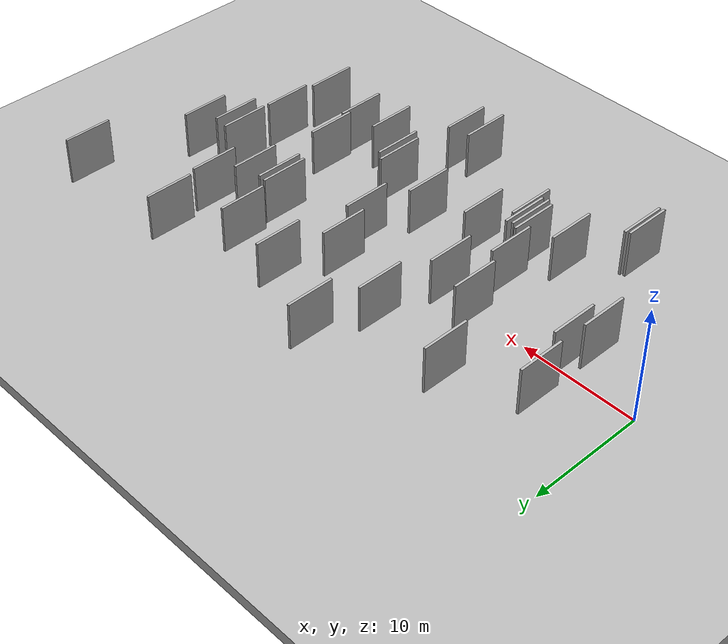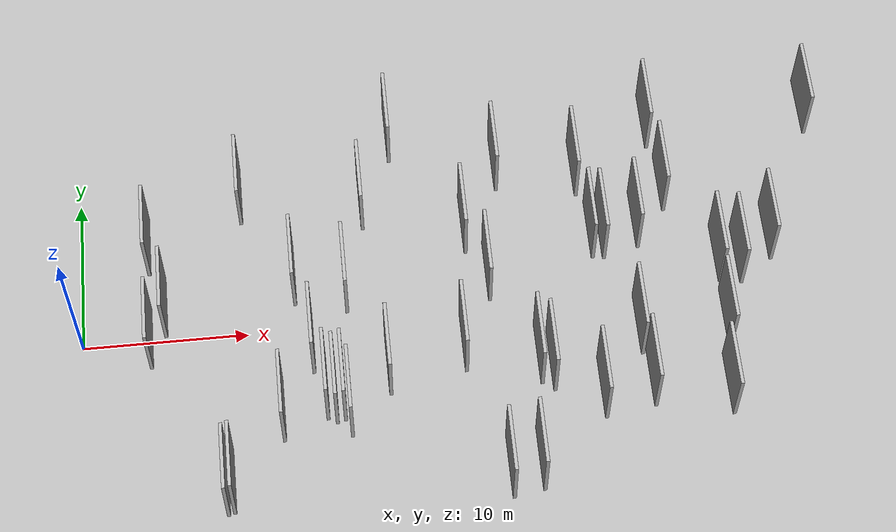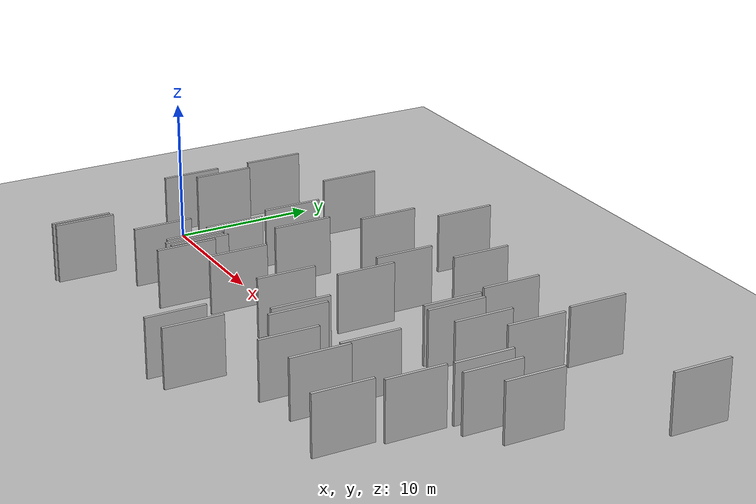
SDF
<?xml version="1.0" encoding="utf-8"?>

<sdf version="1.6">

   <world name="default">

      <gui fullscreen="0">

         <camera name="user_camera">

            <pose>-15 0 4.57585 0 0 0</pose>

            <view_controller>orbit</view_controller>

         </camera>

      </gui>

      <scene>

         <sky>

           <clouds>

             <speed>12</speed>

           </clouds>

         </sky>

         <ambient>0.4 0.4 0.4 1</ambient>

         <background>0.7 0.7 0.7 1</background>

         <shadows>1</shadows>

      </scene>

      <gravity>0 0 -9.8066</gravity>

      <magnetic_field>6e-06 2.3e-05 -4.2e-05</magnetic_field>

      <physics default="0" name="default_physics" type="ode">

         <ode>

            <solver>

               <type>quick</type>

               <iters>10</iters>

               <sor>1.0</sor>

               <use_dynamic_moi_rescaling>0</use_dynamic_moi_rescaling>

            </solver>

            <constraints>

               <cfm>0</cfm>

               <erp>0.2</erp>

               <contact_max_correcting_vel>100</contact_max_correcting_vel>

               <contact_surface_layer>0.001</contact_surface_layer>

            </constraints>

         </ode>

         <max_step_size>0.004</max_step_size>

         <real_time_factor>1</real_time_factor>

         <real_time_update_rate>250</real_time_update_rate>

      </physics>

      <light name="sun" type="directional">

         <cast_shadows>1</cast_shadows>

         <pose>0 0 10 0 0 0</pose>

         <diffuse>0.8 0.8 0.8 1</diffuse>

         <specular>0.2 0.2 0.2 1</specular>

         <attenuation>

            <range>1000</range>

            <constant>0.9</constant>

            <linear>0.01</linear>

            <quadratic>0.001</quadratic>

         </attenuation>

         <direction>-0.5 0.1 -0.9</direction>

      </light>

      <include>

         <name>ground_plane_1</name>

         <uri>model://HANNAS_ground_plane</uri>

         <pose>0 0 0  0 0 0</pose>

      </include>

      <include>

         <name>ground_plane_2</name>

         <uri>model://HANNAS_ground_plane</uri>

         <pose>100 0 0  0 0 0</pose>

      </include>

      <model name="HANNAS_wall_1">

         <static>1</static>

         <pose frame="">45.3977 11.6775 2.5 0.000000 0.000000 1.570796</pose>

         <link name="link">

            <pose frame="">0 0 2.00 0 0 0</pose>

            <collision name="collision">

               <geometry>

                  <box>

                     <size>4.00 0.2 4.00</size>

                  </box>

               </geometry>

               <max_contacts>10</max_contacts>

               <surface>

                  <contact>

                     <ode/>

                  </contact>

                  <bounce/>

                  <friction>

                     <torsional>

                        <ode/>

                     </torsional>

                     <ode/>

                  </friction>

               </surface>

            </collision>

            <visual name="visual">

               <cast_shadows>0</cast_shadows>

               <geometry>

                  <box>

                     <size>4.00 0.2 4.00</size>

                  </box>

               </geometry>

               <material>

                  <script>

                     <uri>model://HANNAS_wall/materials/scripts</uri>

                     <uri>model://HANNAS_wall/materials/textures</uri>

                     <name>vrc/HANNAS_wall</name>

                  </script>

               </material>

            </visual>

            <self_collide>0</self_collide>

            <enable_wind>0</enable_wind>

            <kinematic>0</kinematic>

         </link>

      </model>

      <model name="HANNAS_wall_2">

         <static>1</static>

         <pose frame="">22.7537 -2.9707 2.5 0.000000 0.000000 1.570796</pose>

         <link name="link">

            <pose frame="">0 0 2.00 0 0 0</pose>

            <collision name="collision">

               <geometry>

                  <box>

                     <size>4.00 0.2 4.00</size>

                  </box>

               </geometry>

               <max_contacts>10</max_contacts>

               <surface>

                  <contact>

                     <ode/>

                  </contact>

                  <bounce/>

                  <friction>

                     <torsional>

                        <ode/>

                     </torsional>

                     <ode/>

                  </friction>

               </surface>

            </collision>

            <visual name="visual">

               <cast_shadows>0</cast_shadows>

               <geometry>

                  <box>

                     <size>4.00 0.2 4.00</size>

                  </box>

               </geometry>

               <material>

                  <script>

                     <uri>model://HANNAS_wall/materials/scripts</uri>

                     <uri>model://HANNAS_wall/materials/textures</uri>

                     <name>vrc/HANNAS_wall</name>

                  </script>

               </material>

            </visual>

            <self_collide>0</self_collide>

            <enable_wind>0</enable_wind>

            <kinematic>0</kinematic>

         </link>

      </model>

      <model name="HANNAS_wall_3">

         <static>1</static>

         <pose frame="">4.3672 5.2588 2.5 0.000000 0.000000 1.570796</pose>

         <link name="link">

            <pose frame="">0 0 2.00 0 0 0</pose>

            <collision name="collision">

               <geometry>

                  <box>

                     <size>4.00 0.2 4.00</size>

                  </box>

               </geometry>

               <max_contacts>10</max_contacts>

               <surface>

                  <contact>

                     <ode/>

                  </contact>

                  <bounce/>

                  <friction>

                     <torsional>

                        <ode/>

                     </torsional>

                     <ode/>

                  </friction>

               </surface>

            </collision>

            <visual name="visual">

               <cast_shadows>0</cast_shadows>

               <geometry>

                  <box>

                     <size>4.00 0.2 4.00</size>

                  </box>

               </geometry>

               <material>

                  <script>

                     <uri>model://HANNAS_wall/materials/scripts</uri>

                     <uri>model://HANNAS_wall/materials/textures</uri>

                     <name>vrc/HANNAS_wall</name>

                  </script>

               </material>

            </visual>

            <self_collide>0</self_collide>

            <enable_wind>0</enable_wind>

            <kinematic>0</kinematic>

         </link>

      </model>

      <model name="HANNAS_wall_4">

         <static>1</static>

         <pose frame="">13.8308 -2.2377 2.5 0.000000 0.000000 1.570796</pose>

         <link name="link">

            <pose frame="">0 0 2.00 0 0 0</pose>

            <collision name="collision">

               <geometry>

                  <box>

                     <size>4.00 0.2 4.00</size>

                  </box>

               </geometry>

               <max_contacts>10</max_contacts>

               <surface>

                  <contact>

                     <ode/>

                  </contact>

                  <bounce/>

                  <friction>

                     <torsional>

                        <ode/>

                     </torsional>

                     <ode/>

                  </friction>

               </surface>

            </collision>

            <visual name="visual">

               <cast_shadows>0</cast_shadows>

               <geometry>

                  <box>

                     <size>4.00 0.2 4.00</size>

                  </box>

               </geometry>

               <material>

                  <script>

                     <uri>model://HANNAS_wall/materials/scripts</uri>

                     <uri>model://HANNAS_wall/materials/textures</uri>

                     <name>vrc/HANNAS_wall</name>

                  </script>

               </material>

            </visual>

            <self_collide>0</self_collide>

            <enable_wind>0</enable_wind>

            <kinematic>0</kinematic>

         </link>

      </model>

      <model name="HANNAS_wall_5">

         <static>1</static>

         <pose frame="">38.5071 1.6063 2.5 0.000000 0.000000 1.570796</pose>

         <link name="link">

            <pose frame="">0 0 2.00 0 0 0</pose>

            <collision name="collision">

               <geometry>

                  <box>

                     <size>4.00 0.2 4.00</size>

                  </box>

               </geometry>

               <max_contacts>10</max_contacts>

               <surface>

                  <contact>

                     <ode/>

                  </contact>

                  <bounce/>

                  <friction>

                     <torsional>

                        <ode/>

                     </torsional>

                     <ode/>

                  </friction>

               </surface>

            </collision>

            <visual name="visual">

               <cast_shadows>0</cast_shadows>

               <geometry>

                  <box>

                     <size>4.00 0.2 4.00</size>

                  </box>

               </geometry>

               <material>

                  <script>

                     <uri>model://HANNAS_wall/materials/scripts</uri>

                     <uri>model://HANNAS_wall/materials/textures</uri>

                     <name>vrc/HANNAS_wall</name>

                  </script>

               </material>

            </visual>

            <self_collide>0</self_collide>

            <enable_wind>0</enable_wind>

            <kinematic>0</kinematic>

         </link>

      </model>

      <model name="HANNAS_wall_6">

         <static>1</static>

         <pose frame="">27.7745 -4.6999 2.5 0.000000 0.000000 1.570796</pose>

         <link name="link">

            <pose frame="">0 0 2.00 0 0 0</pose>

            <collision name="collision">

               <geometry>

                  <box>

                     <size>4.00 0.2 4.00</size>

                  </box>

               </geometry>

               <max_contacts>10</max_contacts>

               <surface>

                  <contact>

                     <ode/>

                  </contact>

                  <bounce/>

                  <friction>

                     <torsional>

                        <ode/>

                     </torsional>

                     <ode/>

                  </friction>

               </surface>

            </collision>

            <visual name="visual">

               <cast_shadows>0</cast_shadows>

               <geometry>

                  <box>

                     <size>4.00 0.2 4.00</size>

                  </box>

               </geometry>

               <material>

                  <script>

                     <uri>model://HANNAS_wall/materials/scripts</uri>

                     <uri>model://HANNAS_wall/materials/textures</uri>

                     <name>vrc/HANNAS_wall</name>

                  </script>

               </material>

            </visual>

            <self_collide>0</self_collide>

            <enable_wind>0</enable_wind>

            <kinematic>0</kinematic>

         </link>

      </model>

      <model name="HANNAS_wall_7">

         <static>1</static>

         <pose frame="">15.4497 -5.4862 2.5 0.000000 0.000000 1.570796</pose>

         <link name="link">

            <pose frame="">0 0 2.00 0 0 0</pose>

            <collision name="collision">

               <geometry>

                  <box>

                     <size>4.00 0.2 4.00</size>

                  </box>

               </geometry>

               <max_contacts>10</max_contacts>

               <surface>

                  <contact>

                     <ode/>

                  </contact>

                  <bounce/>

                  <friction>

                     <torsional>

                        <ode/>

                     </torsional>

                     <ode/>

                  </friction>

               </surface>

            </collision>

            <visual name="visual">

               <cast_shadows>0</cast_shadows>

               <geometry>

                  <box>

                     <size>4.00 0.2 4.00</size>

                  </box>

               </geometry>

               <material>

                  <script>

                     <uri>model://HANNAS_wall/materials/scripts</uri>

                     <uri>model://HANNAS_wall/materials/textures</uri>

                     <name>vrc/HANNAS_wall</name>

                  </script>

               </material>

            </visual>

            <self_collide>0</self_collide>

            <enable_wind>0</enable_wind>

            <kinematic>0</kinematic>

         </link>

      </model>

      <model name="HANNAS_wall_8">

         <static>1</static>

         <pose frame="">33.5067 -6.2307 2.5 0.000000 0.000000 1.570796</pose>

         <link name="link">

            <pose frame="">0 0 2.00 0 0 0</pose>

            <collision name="collision">

               <geometry>

                  <box>

                     <size>4.00 0.2 4.00</size>

                  </box>

               </geometry>

               <max_contacts>10</max_contacts>

               <surface>

                  <contact>

                     <ode/>

                  </contact>

                  <bounce/>

                  <friction>

                     <torsional>

                        <ode/>

                     </torsional>

                     <ode/>

                  </friction>

               </surface>

            </collision>

            <visual name="visual">

               <cast_shadows>0</cast_shadows>

               <geometry>

                  <box>

                     <size>4.00 0.2 4.00</size>

                  </box>

               </geometry>

               <material>

                  <script>

                     <uri>model://HANNAS_wall/materials/scripts</uri>

                     <uri>model://HANNAS_wall/materials/textures</uri>

                     <name>vrc/HANNAS_wall</name>

                  </script>

               </material>

            </visual>

            <self_collide>0</self_collide>

            <enable_wind>0</enable_wind>

            <kinematic>0</kinematic>

         </link>

      </model>

      <model name="HANNAS_wall_9">

         <static>1</static>

         <pose frame="">27.0793 -4.1753 2.5 0.000000 0.000000 1.570796</pose>

         <link name="link">

            <pose frame="">0 0 2.00 0 0 0</pose>

            <collision name="collision">

               <geometry>

                  <box>

                     <size>4.00 0.2 4.00</size>

                  </box>

               </geometry>

               <max_contacts>10</max_contacts>

               <surface>

                  <contact>

                     <ode/>

                  </contact>

                  <bounce/>

                  <friction>

                     <torsional>

                        <ode/>

                     </torsional>

                     <ode/>

                  </friction>

               </surface>

            </collision>

            <visual name="visual">

               <cast_shadows>0</cast_shadows>

               <geometry>

                  <box>

                     <size>4.00 0.2 4.00</size>

                  </box>

               </geometry>

               <material>

                  <script>

                     <uri>model://HANNAS_wall/materials/scripts</uri>

                     <uri>model://HANNAS_wall/materials/textures</uri>

                     <name>vrc/HANNAS_wall</name>

                  </script>

               </material>

            </visual>

            <self_collide>0</self_collide>

            <enable_wind>0</enable_wind>

            <kinematic>0</kinematic>

         </link>

      </model>

      <model name="HANNAS_wall_10">

         <static>1</static>

         <pose frame="">14.9613 -5.6307 2.5 0.000000 0.000000 1.570796</pose>

         <link name="link">

            <pose frame="">0 0 2.00 0 0 0</pose>

            <collision name="collision">

               <geometry>

                  <box>

                     <size>4.00 0.2 4.00</size>

                  </box>

               </geometry>

               <max_contacts>10</max_contacts>

               <surface>

                  <contact>

                     <ode/>

                  </contact>

                  <bounce/>

                  <friction>

                     <torsional>

                        <ode/>

                     </torsional>

                     <ode/>

                  </friction>

               </surface>

            </collision>

            <visual name="visual">

               <cast_shadows>0</cast_shadows>

               <geometry>

                  <box>

                     <size>4.00 0.2 4.00</size>

                  </box>

               </geometry>

               <material>

                  <script>

                     <uri>model://HANNAS_wall/materials/scripts</uri>

                     <uri>model://HANNAS_wall/materials/textures</uri>

                     <name>vrc/HANNAS_wall</name>

                  </script>

               </material>

            </visual>

            <self_collide>0</self_collide>

            <enable_wind>0</enable_wind>

            <kinematic>0</kinematic>

         </link>

      </model>

      <model name="HANNAS_wall_11">

         <static>1</static>

         <pose frame="">24.6062 1.6296 2.5 0.000000 0.000000 1.570796</pose>

         <link name="link">

            <pose frame="">0 0 2.00 0 0 0</pose>

            <collision name="collision">

               <geometry>

                  <box>

                     <size>4.00 0.2 4.00</size>

                  </box>

               </geometry>

               <max_contacts>10</max_contacts>

               <surface>

                  <contact>

                     <ode/>

                  </contact>

                  <bounce/>

                  <friction>

                     <torsional>

                        <ode/>

                     </torsional>

                     <ode/>

                  </friction>

               </surface>

            </collision>

            <visual name="visual">

               <cast_shadows>0</cast_shadows>

               <geometry>

                  <box>

                     <size>4.00 0.2 4.00</size>

                  </box>

               </geometry>

               <material>

                  <script>

                     <uri>model://HANNAS_wall/materials/scripts</uri>

                     <uri>model://HANNAS_wall/materials/textures</uri>

                     <name>vrc/HANNAS_wall</name>

                  </script>

               </material>

            </visual>

            <self_collide>0</self_collide>

            <enable_wind>0</enable_wind>

            <kinematic>0</kinematic>

         </link>

      </model>

      <model name="HANNAS_wall_12">

         <static>1</static>

         <pose frame="">8.4227 -10.8272 2.5 0.000000 0.000000 1.570796</pose>

         <link name="link">

            <pose frame="">0 0 2.00 0 0 0</pose>

            <collision name="collision">

               <geometry>

                  <box>

                     <size>4.00 0.2 4.00</size>

                  </box>

               </geometry>

               <max_contacts>10</max_contacts>

               <surface>

                  <contact>

                     <ode/>

                  </contact>

                  <bounce/>

                  <friction>

                     <torsional>

                        <ode/>

                     </torsional>

                     <ode/>

                  </friction>

               </surface>

            </collision>

            <visual name="visual">

               <cast_shadows>0</cast_shadows>

               <geometry>

                  <box>

                     <size>4.00 0.2 4.00</size>

                  </box>

               </geometry>

               <material>

                  <script>

                     <uri>model://HANNAS_wall/materials/scripts</uri>

                     <uri>model://HANNAS_wall/materials/textures</uri>

                     <name>vrc/HANNAS_wall</name>

                  </script>

               </material>

            </visual>

            <self_collide>0</self_collide>

            <enable_wind>0</enable_wind>

            <kinematic>0</kinematic>

         </link>

      </model>

      <model name="HANNAS_wall_13">

         <static>1</static>

         <pose frame="">37.9664 -7.1653 2.5 0.000000 0.000000 1.570796</pose>

         <link name="link">

            <pose frame="">0 0 2.00 0 0 0</pose>

            <collision name="collision">

               <geometry>

                  <box>

                     <size>4.00 0.2 4.00</size>

                  </box>

               </geometry>

               <max_contacts>10</max_contacts>

               <surface>

                  <contact>

                     <ode/>

                  </contact>

                  <bounce/>

                  <friction>

                     <torsional>

                        <ode/>

                     </torsional>

                     <ode/>

                  </friction>

               </surface>

            </collision>

            <visual name="visual">

               <cast_shadows>0</cast_shadows>

               <geometry>

                  <box>

                     <size>4.00 0.2 4.00</size>

                  </box>

               </geometry>

               <material>

                  <script>

                     <uri>model://HANNAS_wall/materials/scripts</uri>

                     <uri>model://HANNAS_wall/materials/textures</uri>

                     <name>vrc/HANNAS_wall</name>

                  </script>

               </material>

            </visual>

            <self_collide>0</self_collide>

            <enable_wind>0</enable_wind>

            <kinematic>0</kinematic>

         </link>

      </model>

      <model name="HANNAS_wall_14">

         <static>1</static>

         <pose frame="">33.9130 4.4398 2.5 0.000000 0.000000 1.570796</pose>

         <link name="link">

            <pose frame="">0 0 2.00 0 0 0</pose>

            <collision name="collision">

               <geometry>

                  <box>

                     <size>4.00 0.2 4.00</size>

                  </box>

               </geometry>

               <max_contacts>10</max_contacts>

               <surface>

                  <contact>

                     <ode/>

                  </contact>

                  <bounce/>

                  <friction>

                     <torsional>

                        <ode/>

                     </torsional>

                     <ode/>

                  </friction>

               </surface>

            </collision>

            <visual name="visual">

               <cast_shadows>0</cast_shadows>

               <geometry>

                  <box>

                     <size>4.00 0.2 4.00</size>

                  </box>

               </geometry>

               <material>

                  <script>

                     <uri>model://HANNAS_wall/materials/scripts</uri>

                     <uri>model://HANNAS_wall/materials/textures</uri>

                     <name>vrc/HANNAS_wall</name>

                  </script>

               </material>

            </visual>

            <self_collide>0</self_collide>

            <enable_wind>0</enable_wind>

            <kinematic>0</kinematic>

         </link>

      </model>

      <model name="HANNAS_wall_15">

         <static>1</static>

         <pose frame="">10.0478 8.3223 2.5 0.000000 0.000000 1.570796</pose>

         <link name="link">

            <pose frame="">0 0 2.00 0 0 0</pose>

            <collision name="collision">

               <geometry>

                  <box>

                     <size>4.00 0.2 4.00</size>

                  </box>

               </geometry>

               <max_contacts>10</max_contacts>

               <surface>

                  <contact>

                     <ode/>

                  </contact>

                  <bounce/>

                  <friction>

                     <torsional>

                        <ode/>

                     </torsional>

                     <ode/>

                  </friction>

               </surface>

            </collision>

            <visual name="visual">

               <cast_shadows>0</cast_shadows>

               <geometry>

                  <box>

                     <size>4.00 0.2 4.00</size>

                  </box>

               </geometry>

               <material>

                  <script>

                     <uri>model://HANNAS_wall/materials/scripts</uri>

                     <uri>model://HANNAS_wall/materials/textures</uri>

                     <name>vrc/HANNAS_wall</name>

                  </script>

               </material>

            </visual>

            <self_collide>0</self_collide>

            <enable_wind>0</enable_wind>

            <kinematic>0</kinematic>

         </link>

      </model>

      <model name="HANNAS_wall_16">

         <static>1</static>

         <pose frame="">23.4677 5.0168 2.5 0.000000 0.000000 1.570796</pose>

         <link name="link">

            <pose frame="">0 0 2.00 0 0 0</pose>

            <collision name="collision">

               <geometry>

                  <box>

                     <size>4.00 0.2 4.00</size>

                  </box>

               </geometry>

               <max_contacts>10</max_contacts>

               <surface>

                  <contact>

                     <ode/>

                  </contact>

                  <bounce/>

                  <friction>

                     <torsional>

                        <ode/>

                     </torsional>

                     <ode/>

                  </friction>

               </surface>

            </collision>

            <visual name="visual">

               <cast_shadows>0</cast_shadows>

               <geometry>

                  <box>

                     <size>4.00 0.2 4.00</size>

                  </box>

               </geometry>

               <material>

                  <script>

                     <uri>model://HANNAS_wall/materials/scripts</uri>

                     <uri>model://HANNAS_wall/materials/textures</uri>

                     <name>vrc/HANNAS_wall</name>

                  </script>

               </material>

            </visual>

            <self_collide>0</self_collide>

            <enable_wind>0</enable_wind>

            <kinematic>0</kinematic>

         </link>

      </model>

      <model name="HANNAS_wall_17">

         <static>1</static>

         <pose frame="">15.7750 -6.5545 2.5 0.000000 0.000000 1.570796</pose>

         <link name="link">

            <pose frame="">0 0 2.00 0 0 0</pose>

            <collision name="collision">

               <geometry>

                  <box>

                     <size>4.00 0.2 4.00</size>

                  </box>

               </geometry>

               <max_contacts>10</max_contacts>

               <surface>

                  <contact>

                     <ode/>

                  </contact>

                  <bounce/>

                  <friction>

                     <torsional>

                        <ode/>

                     </torsional>

                     <ode/>

                  </friction>

               </surface>

            </collision>

            <visual name="visual">

               <cast_shadows>0</cast_shadows>

               <geometry>

                  <box>

                     <size>4.00 0.2 4.00</size>

                  </box>

               </geometry>

               <material>

                  <script>

                     <uri>model://HANNAS_wall/materials/scripts</uri>

                     <uri>model://HANNAS_wall/materials/textures</uri>

                     <name>vrc/HANNAS_wall</name>

                  </script>

               </material>

            </visual>

            <self_collide>0</self_collide>

            <enable_wind>0</enable_wind>

            <kinematic>0</kinematic>

         </link>

      </model>

      <model name="HANNAS_wall_18">

         <static>1</static>

         <pose frame="">41.8086 2.8815 2.5 0.000000 0.000000 1.570796</pose>

         <link name="link">

            <pose frame="">0 0 2.00 0 0 0</pose>

            <collision name="collision">

               <geometry>

                  <box>

                     <size>4.00 0.2 4.00</size>

                  </box>

               </geometry>

               <max_contacts>10</max_contacts>

               <surface>

                  <contact>

                     <ode/>

                  </contact>

                  <bounce/>

                  <friction>

                     <torsional>

                        <ode/>

                     </torsional>

                     <ode/>

                  </friction>

               </surface>

            </collision>

            <visual name="visual">

               <cast_shadows>0</cast_shadows>

               <geometry>

                  <box>

                     <size>4.00 0.2 4.00</size>

                  </box>

               </geometry>

               <material>

                  <script>

                     <uri>model://HANNAS_wall/materials/scripts</uri>

                     <uri>model://HANNAS_wall/materials/textures</uri>

                     <name>vrc/HANNAS_wall</name>

                  </script>

               </material>

            </visual>

            <self_collide>0</self_collide>

            <enable_wind>0</enable_wind>

            <kinematic>0</kinematic>

         </link>

      </model>

      <model name="HANNAS_wall_19">

         <static>1</static>

         <pose frame="">12.9870 2.4000 2.5 0.000000 0.000000 1.570796</pose>

         <link name="link">

            <pose frame="">0 0 2.00 0 0 0</pose>

            <collision name="collision">

               <geometry>

                  <box>

                     <size>4.00 0.2 4.00</size>

                  </box>

               </geometry>

               <max_contacts>10</max_contacts>

               <surface>

                  <contact>

                     <ode/>

                  </contact>

                  <bounce/>

                  <friction>

                     <torsional>

                        <ode/>

                     </torsional>

                     <ode/>

                  </friction>

               </surface>

            </collision>

            <visual name="visual">

               <cast_shadows>0</cast_shadows>

               <geometry>

                  <box>

                     <size>4.00 0.2 4.00</size>

                  </box>

               </geometry>

               <material>

                  <script>

                     <uri>model://HANNAS_wall/materials/scripts</uri>

                     <uri>model://HANNAS_wall/materials/textures</uri>

                     <name>vrc/HANNAS_wall</name>

                  </script>

               </material>

            </visual>

            <self_collide>0</self_collide>

            <enable_wind>0</enable_wind>

            <kinematic>0</kinematic>

         </link>

      </model>

      <model name="HANNAS_wall_20">

         <static>1</static>

         <pose frame="">8.7756 -10.7114 2.5 0.000000 0.000000 1.570796</pose>

         <link name="link">

            <pose frame="">0 0 2.00 0 0 0</pose>

            <collision name="collision">

               <geometry>

                  <box>

                     <size>4.00 0.2 4.00</size>

                  </box>

               </geometry>

               <max_contacts>10</max_contacts>

               <surface>

                  <contact>

                     <ode/>

                  </contact>

                  <bounce/>

                  <friction>

                     <torsional>

                        <ode/>

                     </torsional>

                     <ode/>

                  </friction>

               </surface>

            </collision>

            <visual name="visual">

               <cast_shadows>0</cast_shadows>

               <geometry>

                  <box>

                     <size>4.00 0.2 4.00</size>

                  </box>

               </geometry>

               <material>

                  <script>

                     <uri>model://HANNAS_wall/materials/scripts</uri>

                     <uri>model://HANNAS_wall/materials/textures</uri>

                     <name>vrc/HANNAS_wall</name>

                  </script>

               </material>

            </visual>

            <self_collide>0</self_collide>

            <enable_wind>0</enable_wind>

            <kinematic>0</kinematic>

         </link>

      </model>

      <model name="HANNAS_wall_21">

         <static>1</static>

         <pose frame="">11.8575 -6.4909 2.5 0.000000 0.000000 1.570796</pose>

         <link name="link">

            <pose frame="">0 0 2.00 0 0 0</pose>

            <collision name="collision">

               <geometry>

                  <box>

                     <size>4.00 0.2 4.00</size>

                  </box>

               </geometry>

               <max_contacts>10</max_contacts>

               <surface>

                  <contact>

                     <ode/>

                  </contact>

                  <bounce/>

                  <friction>

                     <torsional>

                        <ode/>

                     </torsional>

                     <ode/>

                  </friction>

               </surface>

            </collision>

            <visual name="visual">

               <cast_shadows>0</cast_shadows>

               <geometry>

                  <box>

                     <size>4.00 0.2 4.00</size>

                  </box>

               </geometry>

               <material>

                  <script>

                     <uri>model://HANNAS_wall/materials/scripts</uri>

                     <uri>model://HANNAS_wall/materials/textures</uri>

                     <name>vrc/HANNAS_wall</name>

                  </script>

               </material>

            </visual>

            <self_collide>0</self_collide>

            <enable_wind>0</enable_wind>

            <kinematic>0</kinematic>

         </link>

      </model>

      <model name="HANNAS_wall_22">

         <static>1</static>

         <pose frame="">30.5495 -6.7276 2.5 0.000000 0.000000 1.570796</pose>

         <link name="link">

            <pose frame="">0 0 2.00 0 0 0</pose>

            <collision name="collision">

               <geometry>

                  <box>

                     <size>4.00 0.2 4.00</size>

                  </box>

               </geometry>

               <max_contacts>10</max_contacts>

               <surface>

                  <contact>

                     <ode/>

                  </contact>

                  <bounce/>

                  <friction>

                     <torsional>

                        <ode/>

                     </torsional>

                     <ode/>

                  </friction>

               </surface>

            </collision>

            <visual name="visual">

               <cast_shadows>0</cast_shadows>

               <geometry>

                  <box>

                     <size>4.00 0.2 4.00</size>

                  </box>

               </geometry>

               <material>

                  <script>

                     <uri>model://HANNAS_wall/materials/scripts</uri>

                     <uri>model://HANNAS_wall/materials/textures</uri>

                     <name>vrc/HANNAS_wall</name>

                  </script>

               </material>

            </visual>

            <self_collide>0</self_collide>

            <enable_wind>0</enable_wind>

            <kinematic>0</kinematic>

         </link>

      </model>

      <model name="HANNAS_wall_23">

         <static>1</static>

         <pose frame="">31.7696 3.8670 2.5 0.000000 0.000000 1.570796</pose>

         <link name="link">

            <pose frame="">0 0 2.00 0 0 0</pose>

            <collision name="collision">

               <geometry>

                  <box>

                     <size>4.00 0.2 4.00</size>

                  </box>

               </geometry>

               <max_contacts>10</max_contacts>

               <surface>

                  <contact>

                     <ode/>

                  </contact>

                  <bounce/>

                  <friction>

                     <torsional>

                        <ode/>

                     </torsional>

                     <ode/>

                  </friction>

               </surface>

            </collision>

            <visual name="visual">

               <cast_shadows>0</cast_shadows>

               <geometry>

                  <box>

                     <size>4.00 0.2 4.00</size>

                  </box>

               </geometry>

               <material>

                  <script>

                     <uri>model://HANNAS_wall/materials/scripts</uri>

                     <uri>model://HANNAS_wall/materials/textures</uri>

                     <name>vrc/HANNAS_wall</name>

                  </script>

               </material>

            </visual>

            <self_collide>0</self_collide>

            <enable_wind>0</enable_wind>

            <kinematic>0</kinematic>

         </link>

      </model>

      <model name="HANNAS_wall_24">

         <static>1</static>

         <pose frame="">16.0452 1.6041 2.5 0.000000 0.000000 1.570796</pose>

         <link name="link">

            <pose frame="">0 0 2.00 0 0 0</pose>

            <collision name="collision">

               <geometry>

                  <box>

                     <size>4.00 0.2 4.00</size>

                  </box>

               </geometry>

               <max_contacts>10</max_contacts>

               <surface>

                  <contact>

                     <ode/>

                  </contact>

                  <bounce/>

                  <friction>

                     <torsional>

                        <ode/>

                     </torsional>

                     <ode/>

                  </friction>

               </surface>

            </collision>

            <visual name="visual">

               <cast_shadows>0</cast_shadows>

               <geometry>

                  <box>

                     <size>4.00 0.2 4.00</size>

                  </box>

               </geometry>

               <material>

                  <script>

                     <uri>model://HANNAS_wall/materials/scripts</uri>

                     <uri>model://HANNAS_wall/materials/textures</uri>

                     <name>vrc/HANNAS_wall</name>

                  </script>

               </material>

            </visual>

            <self_collide>0</self_collide>

            <enable_wind>0</enable_wind>

            <kinematic>0</kinematic>

         </link>

      </model>

      <model name="HANNAS_wall_25">

         <static>1</static>

         <pose frame="">31.1017 3.9768 2.5 0.000000 0.000000 1.570796</pose>

         <link name="link">

            <pose frame="">0 0 2.00 0 0 0</pose>

            <collision name="collision">

               <geometry>

                  <box>

                     <size>4.00 0.2 4.00</size>

                  </box>

               </geometry>

               <max_contacts>10</max_contacts>

               <surface>

                  <contact>

                     <ode/>

                  </contact>

                  <bounce/>

                  <friction>

                     <torsional>

                        <ode/>

                     </torsional>

                     <ode/>

                  </friction>

               </surface>

            </collision>

            <visual name="visual">

               <cast_shadows>0</cast_shadows>

               <geometry>

                  <box>

                     <size>4.00 0.2 4.00</size>

                  </box>

               </geometry>

               <material>

                  <script>

                     <uri>model://HANNAS_wall/materials/scripts</uri>

                     <uri>model://HANNAS_wall/materials/textures</uri>

                     <name>vrc/HANNAS_wall</name>

                  </script>

               </material>

            </visual>

            <self_collide>0</self_collide>

            <enable_wind>0</enable_wind>

            <kinematic>0</kinematic>

         </link>

      </model>

      <model name="HANNAS_wall_26">

         <static>1</static>

         <pose frame="">24.6477 -11.2456 2.5 0.000000 0.000000 1.570796</pose>

         <link name="link">

            <pose frame="">0 0 2.00 0 0 0</pose>

            <collision name="collision">

               <geometry>

                  <box>

                     <size>4.00 0.2 4.00</size>

                  </box>

               </geometry>

               <max_contacts>10</max_contacts>

               <surface>

                  <contact>

                     <ode/>

                  </contact>

                  <bounce/>

                  <friction>

                     <torsional>

                        <ode/>

                     </torsional>

                     <ode/>

                  </friction>

               </surface>

            </collision>

            <visual name="visual">

               <cast_shadows>0</cast_shadows>

               <geometry>

                  <box>

                     <size>4.00 0.2 4.00</size>

                  </box>

               </geometry>

               <material>

                  <script>

                     <uri>model://HANNAS_wall/materials/scripts</uri>

                     <uri>model://HANNAS_wall/materials/textures</uri>

                     <name>vrc/HANNAS_wall</name>

                  </script>

               </material>

            </visual>

            <self_collide>0</self_collide>

            <enable_wind>0</enable_wind>

            <kinematic>0</kinematic>

         </link>

      </model>

      <model name="HANNAS_wall_27">

         <static>1</static>

         <pose frame="">35.8238 6.8842 2.5 0.000000 0.000000 1.570796</pose>

         <link name="link">

            <pose frame="">0 0 2.00 0 0 0</pose>

            <collision name="collision">

               <geometry>

                  <box>

                     <size>4.00 0.2 4.00</size>

                  </box>

               </geometry>

               <max_contacts>10</max_contacts>

               <surface>

                  <contact>

                     <ode/>

                  </contact>

                  <bounce/>

                  <friction>

                     <torsional>

                        <ode/>

                     </torsional>

                     <ode/>

                  </friction>

               </surface>

            </collision>

            <visual name="visual">

               <cast_shadows>0</cast_shadows>

               <geometry>

                  <box>

                     <size>4.00 0.2 4.00</size>

                  </box>

               </geometry>

               <material>

                  <script>

                     <uri>model://HANNAS_wall/materials/scripts</uri>

                     <uri>model://HANNAS_wall/materials/textures</uri>

                     <name>vrc/HANNAS_wall</name>

                  </script>

               </material>

            </visual>

            <self_collide>0</self_collide>

            <enable_wind>0</enable_wind>

            <kinematic>0</kinematic>

         </link>

      </model>

      <model name="HANNAS_wall_28">

         <static>1</static>

         <pose frame="">38.4289 -2.8117 2.5 0.000000 0.000000 1.570796</pose>

         <link name="link">

            <pose frame="">0 0 2.00 0 0 0</pose>

            <collision name="collision">

               <geometry>

                  <box>

                     <size>4.00 0.2 4.00</size>

                  </box>

               </geometry>

               <max_contacts>10</max_contacts>

               <surface>

                  <contact>

                     <ode/>

                  </contact>

                  <bounce/>

                  <friction>

                     <torsional>

                        <ode/>

                     </torsional>

                     <ode/>

                  </friction>

               </surface>

            </collision>

            <visual name="visual">

               <cast_shadows>0</cast_shadows>

               <geometry>

                  <box>

                     <size>4.00 0.2 4.00</size>

                  </box>

               </geometry>

               <material>

                  <script>

                     <uri>model://HANNAS_wall/materials/scripts</uri>

                     <uri>model://HANNAS_wall/materials/textures</uri>

                     <name>vrc/HANNAS_wall</name>

                  </script>

               </material>

            </visual>

            <self_collide>0</self_collide>

            <enable_wind>0</enable_wind>

            <kinematic>0</kinematic>

         </link>

      </model>

      <model name="HANNAS_wall_29">

         <static>1</static>

         <pose frame="">18.2051 -4.0676 2.5 0.000000 0.000000 1.570796</pose>

         <link name="link">

            <pose frame="">0 0 2.00 0 0 0</pose>

            <collision name="collision">

               <geometry>

                  <box>

                     <size>4.00 0.2 4.00</size>

                  </box>

               </geometry>

               <max_contacts>10</max_contacts>

               <surface>

                  <contact>

                     <ode/>

                  </contact>

                  <bounce/>

                  <friction>

                     <torsional>

                        <ode/>

                     </torsional>

                     <ode/>

                  </friction>

               </surface>

            </collision>

            <visual name="visual">

               <cast_shadows>0</cast_shadows>

               <geometry>

                  <box>

                     <size>4.00 0.2 4.00</size>

                  </box>

               </geometry>

               <material>

                  <script>

                     <uri>model://HANNAS_wall/materials/scripts</uri>

                     <uri>model://HANNAS_wall/materials/textures</uri>

                     <name>vrc/HANNAS_wall</name>

                  </script>

               </material>

            </visual>

            <self_collide>0</self_collide>

            <enable_wind>0</enable_wind>

            <kinematic>0</kinematic>

         </link>

      </model>

      <model name="HANNAS_wall_30">

         <static>1</static>

         <pose frame="">33.2054 -2.7865 2.5 0.000000 0.000000 1.570796</pose>

         <link name="link">

            <pose frame="">0 0 2.00 0 0 0</pose>

            <collision name="collision">

               <geometry>

                  <box>

                     <size>4.00 0.2 4.00</size>

                  </box>

               </geometry>

               <max_contacts>10</max_contacts>

               <surface>

                  <contact>

                     <ode/>

                  </contact>

                  <bounce/>

                  <friction>

                     <torsional>

                        <ode/>

                     </torsional>

                     <ode/>

                  </friction>

               </surface>

            </collision>

            <visual name="visual">

               <cast_shadows>0</cast_shadows>

               <geometry>

                  <box>

                     <size>4.00 0.2 4.00</size>

                  </box>

               </geometry>

               <material>

                  <script>

                     <uri>model://HANNAS_wall/materials/scripts</uri>

                     <uri>model://HANNAS_wall/materials/textures</uri>

                     <name>vrc/HANNAS_wall</name>

                  </script>

               </material>

            </visual>

            <self_collide>0</self_collide>

            <enable_wind>0</enable_wind>

            <kinematic>0</kinematic>

         </link>

      </model>

      <model name="HANNAS_wall_31">

         <static>1</static>

         <pose frame="">4.3388 -1.0406 2.5 0.000000 0.000000 1.570796</pose>

         <link name="link">

            <pose frame="">0 0 2.00 0 0 0</pose>

            <collision name="collision">

               <geometry>

                  <box>

                     <size>4.00 0.2 4.00</size>

                  </box>

               </geometry>

               <max_contacts>10</max_contacts>

               <surface>

                  <contact>

                     <ode/>

                  </contact>

                  <bounce/>

                  <friction>

                     <torsional>

                        <ode/>

                     </torsional>

                     <ode/>

                  </friction>

               </surface>

            </collision>

            <visual name="visual">

               <cast_shadows>0</cast_shadows>

               <geometry>

                  <box>

                     <size>4.00 0.2 4.00</size>

                  </box>

               </geometry>

               <material>

                  <script>

                     <uri>model://HANNAS_wall/materials/scripts</uri>

                     <uri>model://HANNAS_wall/materials/textures</uri>

                     <name>vrc/HANNAS_wall</name>

                  </script>

               </material>

            </visual>

            <self_collide>0</self_collide>

            <enable_wind>0</enable_wind>

            <kinematic>0</kinematic>

         </link>

      </model>

      <model name="HANNAS_wall_32">

         <static>1</static>

         <pose frame="">5.2439 0.9597 2.5 0.000000 0.000000 1.570796</pose>

         <link name="link">

            <pose frame="">0 0 2.00 0 0 0</pose>

            <collision name="collision">

               <geometry>

                  <box>

                     <size>4.00 0.2 4.00</size>

                  </box>

               </geometry>

               <max_contacts>10</max_contacts>

               <surface>

                  <contact>

                     <ode/>

                  </contact>

                  <bounce/>

                  <friction>

                     <torsional>

                        <ode/>

                     </torsional>

                     <ode/>

                  </friction>

               </surface>

            </collision>

            <visual name="visual">

               <cast_shadows>0</cast_shadows>

               <geometry>

                  <box>

                     <size>4.00 0.2 4.00</size>

                  </box>

               </geometry>

               <material>

                  <script>

                     <uri>model://HANNAS_wall/materials/scripts</uri>

                     <uri>model://HANNAS_wall/materials/textures</uri>

                     <name>vrc/HANNAS_wall</name>

                  </script>

               </material>

            </visual>

            <self_collide>0</self_collide>

            <enable_wind>0</enable_wind>

            <kinematic>0</kinematic>

         </link>

      </model>

      <model name="HANNAS_wall_33">

         <static>1</static>

         <pose frame="">19.3803 11.9626 2.5 0.000000 0.000000 1.570796</pose>

         <link name="link">

            <pose frame="">0 0 2.00 0 0 0</pose>

            <collision name="collision">

               <geometry>

                  <box>

                     <size>4.00 0.2 4.00</size>

                  </box>

               </geometry>

               <max_contacts>10</max_contacts>

               <surface>

                  <contact>

                     <ode/>

                  </contact>

                  <bounce/>

                  <friction>

                     <torsional>

                        <ode/>

                     </torsional>

                     <ode/>

                  </friction>

               </surface>

            </collision>

            <visual name="visual">

               <cast_shadows>0</cast_shadows>

               <geometry>

                  <box>

                     <size>4.00 0.2 4.00</size>

                  </box>

               </geometry>

               <material>

                  <script>

                     <uri>model://HANNAS_wall/materials/scripts</uri>

                     <uri>model://HANNAS_wall/materials/textures</uri>

                     <name>vrc/HANNAS_wall</name>

                  </script>

               </material>

            </visual>

            <self_collide>0</self_collide>

            <enable_wind>0</enable_wind>

            <kinematic>0</kinematic>

         </link>

      </model>

      <model name="HANNAS_wall_34">

         <static>1</static>

         <pose frame="">25.7737 9.2745 2.5 0.000000 0.000000 1.570796</pose>

         <link name="link">

            <pose frame="">0 0 2.00 0 0 0</pose>

            <collision name="collision">

               <geometry>

                  <box>

                     <size>4.00 0.2 4.00</size>

                  </box>

               </geometry>

               <max_contacts>10</max_contacts>

               <surface>

                  <contact>

                     <ode/>

                  </contact>

                  <bounce/>

                  <friction>

                     <torsional>

                        <ode/>

                     </torsional>

                     <ode/>

                  </friction>

               </surface>

            </collision>

            <visual name="visual">

               <cast_shadows>0</cast_shadows>

               <geometry>

                  <box>

                     <size>4.00 0.2 4.00</size>

                  </box>

               </geometry>

               <material>

                  <script>

                     <uri>model://HANNAS_wall/materials/scripts</uri>

                     <uri>model://HANNAS_wall/materials/textures</uri>

                     <name>vrc/HANNAS_wall</name>

                  </script>

               </material>

            </visual>

            <self_collide>0</self_collide>

            <enable_wind>0</enable_wind>

            <kinematic>0</kinematic>

         </link>

      </model>

      <model name="HANNAS_wall_35">

         <static>1</static>

         <pose frame="">14.4450 -5.3325 2.5 0.000000 0.000000 1.570796</pose>

         <link name="link">

            <pose frame="">0 0 2.00 0 0 0</pose>

            <collision name="collision">

               <geometry>

                  <box>

                     <size>4.00 0.2 4.00</size>

                  </box>

               </geometry>

               <max_contacts>10</max_contacts>

               <surface>

                  <contact>

                     <ode/>

                  </contact>

                  <bounce/>

                  <friction>

                     <torsional>

                        <ode/>

                     </torsional>

                     <ode/>

                  </friction>

               </surface>

            </collision>

            <visual name="visual">

               <cast_shadows>0</cast_shadows>

               <geometry>

                  <box>

                     <size>4.00 0.2 4.00</size>

                  </box>

               </geometry>

               <material>

                  <script>

                     <uri>model://HANNAS_wall/materials/scripts</uri>

                     <uri>model://HANNAS_wall/materials/textures</uri>

                     <name>vrc/HANNAS_wall</name>

                  </script>

               </material>

            </visual>

            <self_collide>0</self_collide>

            <enable_wind>0</enable_wind>

            <kinematic>0</kinematic>

         </link>

      </model>

      <model name="HANNAS_wall_36">

         <static>1</static>

         <pose frame="">35.4410 11.4942 2.5 0.000000 0.000000 1.570796</pose>

         <link name="link">

            <pose frame="">0 0 2.00 0 0 0</pose>

            <collision name="collision">

               <geometry>

                  <box>

                     <size>4.00 0.2 4.00</size>

                  </box>

               </geometry>

               <max_contacts>10</max_contacts>

               <surface>

                  <contact>

                     <ode/>

                  </contact>

                  <bounce/>

                  <friction>

                     <torsional>

                        <ode/>

                     </torsional>

                     <ode/>

                  </friction>

               </surface>

            </collision>

            <visual name="visual">

               <cast_shadows>0</cast_shadows>

               <geometry>

                  <box>

                     <size>4.00 0.2 4.00</size>

                  </box>

               </geometry>

               <material>

                  <script>

                     <uri>model://HANNAS_wall/materials/scripts</uri>

                     <uri>model://HANNAS_wall/materials/textures</uri>

                     <name>vrc/HANNAS_wall</name>

                  </script>

               </material>

            </visual>

            <self_collide>0</self_collide>

            <enable_wind>0</enable_wind>

            <kinematic>0</kinematic>

         </link>

      </model>

      <model name="HANNAS_wall_37">

         <static>1</static>

         <pose frame="">30.6258 8.4538 2.5 0.000000 0.000000 1.570796</pose>

         <link name="link">

            <pose frame="">0 0 2.00 0 0 0</pose>

            <collision name="collision">

               <geometry>

                  <box>

                     <size>4.00 0.2 4.00</size>

                  </box>

               </geometry>

               <max_contacts>10</max_contacts>

               <surface>

                  <contact>

                     <ode/>

                  </contact>

                  <bounce/>

                  <friction>

                     <torsional>

                        <ode/>

                     </torsional>

                     <ode/>

                  </friction>

               </surface>

            </collision>

            <visual name="visual">

               <cast_shadows>0</cast_shadows>

               <geometry>

                  <box>

                     <size>4.00 0.2 4.00</size>

                  </box>

               </geometry>

               <material>

                  <script>

                     <uri>model://HANNAS_wall/materials/scripts</uri>

                     <uri>model://HANNAS_wall/materials/textures</uri>

                     <name>vrc/HANNAS_wall</name>

                  </script>

               </material>

            </visual>

            <self_collide>0</self_collide>

            <enable_wind>0</enable_wind>

            <kinematic>0</kinematic>

         </link>

      </model>

      <model name="HANNAS_wall_38">

         <static>1</static>

         <pose frame="">39.7753 1.4126 2.5 0.000000 0.000000 1.570796</pose>

         <link name="link">

            <pose frame="">0 0 2.00 0 0 0</pose>

            <collision name="collision">

               <geometry>

                  <box>

                     <size>4.00 0.2 4.00</size>

                  </box>

               </geometry>

               <max_contacts>10</max_contacts>

               <surface>

                  <contact>

                     <ode/>

                  </contact>

                  <bounce/>

                  <friction>

                     <torsional>

                        <ode/>

                     </torsional>

                     <ode/>

                  </friction>

               </surface>

            </collision>

            <visual name="visual">

               <cast_shadows>0</cast_shadows>

               <geometry>

                  <box>

                     <size>4.00 0.2 4.00</size>

                  </box>

               </geometry>

               <material>

                  <script>

                     <uri>model://HANNAS_wall/materials/scripts</uri>

                     <uri>model://HANNAS_wall/materials/textures</uri>

                     <name>vrc/HANNAS_wall</name>

                  </script>

               </material>

            </visual>

            <self_collide>0</self_collide>

            <enable_wind>0</enable_wind>

            <kinematic>0</kinematic>

         </link>

      </model>

      <model name="HANNAS_wall_39">

         <static>1</static>

         <pose frame="">26.4369 -10.9244 2.5 0.000000 0.000000 1.570796</pose>

         <link name="link">

            <pose frame="">0 0 2.00 0 0 0</pose>

            <collision name="collision">

               <geometry>

                  <box>

                     <size>4.00 0.2 4.00</size>

                  </box>

               </geometry>

               <max_contacts>10</max_contacts>

               <surface>

                  <contact>

                     <ode/>

                  </contact>

                  <bounce/>

                  <friction>

                     <torsional>

                        <ode/>

                     </torsional>

                     <ode/>

                  </friction>

               </surface>

            </collision>

            <visual name="visual">

               <cast_shadows>0</cast_shadows>

               <geometry>

                  <box>

                     <size>4.00 0.2 4.00</size>

                  </box>

               </geometry>

               <material>

                  <script>

                     <uri>model://HANNAS_wall/materials/scripts</uri>

                     <uri>model://HANNAS_wall/materials/textures</uri>

                     <name>vrc/HANNAS_wall</name>

                  </script>

               </material>

            </visual>

            <self_collide>0</self_collide>

            <enable_wind>0</enable_wind>

            <kinematic>0</kinematic>

         </link>

      </model>

      <model name="HANNAS_wall_40">

         <static>1</static>

         <pose frame="">17.3918 7.2619 2.5 0.000000 0.000000 1.570796</pose>

         <link name="link">

            <pose frame="">0 0 2.00 0 0 0</pose>

            <collision name="collision">

               <geometry>

                  <box>

                     <size>4.00 0.2 4.00</size>

                  </box>

               </geometry>

               <max_contacts>10</max_contacts>

               <surface>

                  <contact>

                     <ode/>

                  </contact>

                  <bounce/>

                  <friction>

                     <torsional>

                        <ode/>

                     </torsional>

                     <ode/>

                  </friction>

               </surface>

            </collision>

            <visual name="visual">

               <cast_shadows>0</cast_shadows>

               <geometry>

                  <box>

                     <size>4.00 0.2 4.00</size>

                  </box>

               </geometry>

               <material>

                  <script>

                     <uri>model://HANNAS_wall/materials/scripts</uri>

                     <uri>model://HANNAS_wall/materials/textures</uri>

                     <name>vrc/HANNAS_wall</name>

                  </script>

               </material>

            </visual>

            <self_collide>0</self_collide>

            <enable_wind>0</enable_wind>

            <kinematic>0</kinematic>

         </link>

      </model>

   </world>

</sdf>
